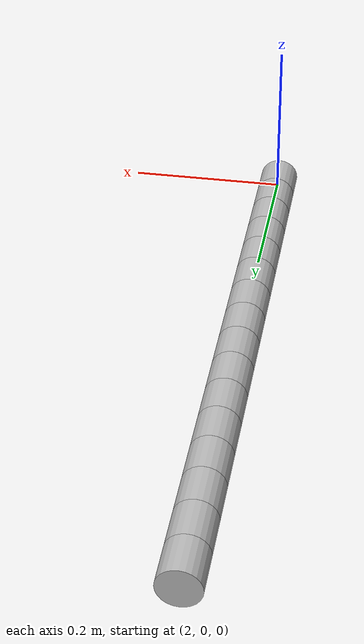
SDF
<sdf version="1.5">
 <world name="default">
  <include><uri>model://sun</uri></include>
  <model name="robot 3">
   <pose>2 0 0 1.57 -0 0</pose>
   <link name="base_link">
    <inertial>
     <pose>0 0 0.025 0 -0 0</pose>
     <mass>0.159</mass>
     <inertia>
      <ixx>5.7969e-05</ixx>
      <ixy>0</ixy>
      <ixz>0</ixz>
      <iyy>5.7969e-05</iyy>
      <iyz>0</iyz>
      <izz>4.9687e-05</izz>
     </inertia>
    </inertial>
    <collision name="base_link_collision">
     <geometry><cylinder><length>0.05</length><radius>0.025</radius></cylinder></geometry>
    </collision>
    <visual name="base_link_visual">
     <geometry><cylinder><length>0.05</length><radius>0.025</radius></cylinder></geometry>
    </visual>
   </link>
   <joint name="fixed" type="ball">
    <child>base_link</child>
    <parent>world</parent>
    <axis>
     <dynamics>
      <damping>0</damping>
      <friction>1</friction>
      <spring_reference>0</spring_reference>
      <spring_stiffness>0</spring_stiffness>
     </dynamics>
     <use_parent_model_frame>1</use_parent_model_frame>
     <xyz>0 0 1</xyz>
    </axis>
   </joint>
   <link name="link02">
    <pose>0 0 -0.025 0 -0 0</pose>
    <inertial>
     <pose>0 0 0.025 0 -0 0</pose>
     <mass>0.159</mass>
     <inertia>
      <ixx>5.7969e-05</ixx>
      <ixy>0</ixy>
      <ixz>0</ixz>
      <iyy>5.7969e-05</iyy>
      <iyz>0</iyz>
      <izz>4.9687e-05</izz>
     </inertia>
    </inertial>
    <collision name="link02_collision">
     <pose>0 0 -0.025 0 -0 0</pose>
     <geometry><cylinder><length>0.05</length><radius>0.025</radius></cylinder></geometry>
    </collision>
    <visual name="link02_visual">
     <pose>0 0 -0.025 0 -0 0</pose>
     <geometry><cylinder><length>0.05</length><radius>0.025</radius></cylinder></geometry>
    </visual>
   </link>
   <joint name="link0102" type="revolute">
    <child>link02</child>
    <parent>base_link</parent>
    <axis>
     <xyz>0 1 0</xyz>
     <limit><lower>-1.57075</lower><upper>1.57075</upper><effort>1000</effort><velocity>1</velocity></limit>
     <dynamics>
      <friction>0.2</friction>
      <spring_reference>0</spring_reference>
      <spring_stiffness>5.0</spring_stiffness>
     </dynamics>
     <use_parent_model_frame>1</use_parent_model_frame>
    </axis>
   </joint>
   <link name="link03">
    <pose>0 0 -0.075 0 -0 0</pose>
    <inertial>
     <pose>0 0 0.025 0 -0 0</pose>
     <mass>0.159</mass>
     <inertia>
      <ixx>5.7969e-05</ixx>
      <ixy>0</ixy>
      <ixz>0</ixz>
      <iyy>5.7969e-05</iyy>
      <iyz>0</iyz>
      <izz>4.9687e-05</izz>
     </inertia>
    </inertial>
    <collision name="link03_collision">
     <pose>0 0 -0.025 0 -0 0</pose>
     <geometry><cylinder><length>0.05</length><radius>0.025</radius></cylinder></geometry>
    </collision>
    <visual name="link03_visual">
     <pose>0 0 -0.025 0 -0 0</pose>
     <geometry><cylinder><length>0.05</length><radius>0.025</radius></cylinder></geometry>
    </visual>
   </link>
   <joint name="link0203" type="revolute">
    <child>link03</child>
    <parent>link02</parent>
    <axis>
     <xyz>1 0 0</xyz>
     <limit><lower>-1.57075</lower><upper>1.57075</upper><effort>1000</effort><velocity>1</velocity></limit>
     <dynamics>
      <friction>0.2</friction>
      <spring_reference>0</spring_reference>
      <spring_stiffness>5.0</spring_stiffness>
     </dynamics>
     <use_parent_model_frame>1</use_parent_model_frame>
    </axis>
   </joint>
   <link name="link04">
    <pose>0 0 -0.125 0 -0 0</pose>
    <inertial>
     <pose>0 0 0.025 0 -0 0</pose>
     <mass>0.159</mass>
     <inertia>
      <ixx>5.7969e-05</ixx>
      <ixy>0</ixy>
      <ixz>0</ixz>
      <iyy>5.7969e-05</iyy>
      <iyz>0</iyz>
      <izz>4.9687e-05</izz>
     </inertia>
    </inertial>
    <collision name="link04_collision">
     <pose>0 0 -0.025 0 -0 0</pose>
     <geometry><cylinder><length>0.05</length><radius>0.025</radius></cylinder></geometry>
    </collision>
    <visual name="link04_visual">
     <pose>0 0 -0.025 0 -0 0</pose>
     <geometry><cylinder><length>0.05</length><radius>0.025</radius></cylinder></geometry>
    </visual>
   </link>
   <joint name="link0304" type="revolute">
    <child>link04</child>
    <parent>link03</parent>
    <axis>
     <xyz>0 1 0</xyz>
     <limit><lower>-1.57075</lower><upper>1.57075</upper><effort>1000</effort><velocity>1</velocity></limit>
     <dynamics>
      <friction>0.2</friction>
      <spring_reference>0</spring_reference>
      <spring_stiffness>5.0</spring_stiffness>
     </dynamics>
     <use_parent_model_frame>1</use_parent_model_frame>
    </axis>
   </joint>
   <link name="link05">
    <pose>0 0 -0.175 0 -0 0</pose>
    <inertial>
     <pose>0 0 0.025 0 -0 0</pose>
     <mass>0.159</mass>
     <inertia>
      <ixx>5.7969e-05</ixx>
      <ixy>0</ixy>
      <ixz>0</ixz>
      <iyy>5.7969e-05</iyy>
      <iyz>0</iyz>
      <izz>4.9687e-05</izz>
     </inertia>
    </inertial>
    <collision name="link05_collision">
     <pose>0 0 -0.025 0 -0 0</pose>
     <geometry><cylinder><length>0.05</length><radius>0.025</radius></cylinder></geometry>
    </collision>
    <visual name="link05_visual">
     <pose>0 0 -0.025 0 -0 0</pose>
     <geometry><cylinder><length>0.05</length><radius>0.025</radius></cylinder></geometry>
    </visual>
   </link>
   <joint name="link0405" type="revolute">
    <child>link05</child>
    <parent>link04</parent>
    <axis>
     <xyz>1 0 0</xyz>
     <limit><lower>-1.57075</lower><upper>1.57075</upper><effort>1000</effort><velocity>1</velocity></limit>
     <dynamics>
      <friction>0.2</friction>
      <spring_reference>0</spring_reference>
      <spring_stiffness>5.0</spring_stiffness>
     </dynamics>
     <use_parent_model_frame>1</use_parent_model_frame>
    </axis>
   </joint>
   <link name="link06">
    <pose>0 0 -0.225 0 -0 0</pose>
    <inertial>
     <pose>0 0 0.025 0 -0 0</pose>
     <mass>0.159</mass>
     <inertia>
      <ixx>5.7969e-05</ixx>
      <ixy>0</ixy>
      <ixz>0</ixz>
      <iyy>5.7969e-05</iyy>
      <iyz>0</iyz>
      <izz>4.9687e-05</izz>
     </inertia>
    </inertial>
    <collision name="link06_collision">
     <pose>0 0 -0.025 0 -0 0</pose>
     <geometry><cylinder><length>0.05</length><radius>0.025</radius></cylinder></geometry>
    </collision>
    <visual name="link06_visual">
     <pose>0 0 -0.025 0 -0 0</pose>
     <geometry><cylinder><length>0.05</length><radius>0.025</radius></cylinder></geometry>
    </visual>
   </link>
   <joint name="link0506" type="revolute">
    <child>link06</child>
    <parent>link05</parent>
    <axis>
     <xyz>0 1 0</xyz>
     <limit><lower>-1.57075</lower><upper>1.57075</upper><effort>1000</effort><velocity>1</velocity></limit>
     <dynamics>
      <friction>0.2</friction>
      <spring_reference>0</spring_reference>
      <spring_stiffness>5.0</spring_stiffness>
     </dynamics>
     <use_parent_model_frame>1</use_parent_model_frame>
    </axis>
   </joint>
   <link name="link07">
    <pose>0 0 -0.275 0 -0 0</pose>
    <inertial>
     <pose>0 0 0.025 0 -0 0</pose>
     <mass>0.159</mass>
     <inertia>
      <ixx>5.7969e-05</ixx>
      <ixy>0</ixy>
      <ixz>0</ixz>
      <iyy>5.7969e-05</iyy>
      <iyz>0</iyz>
      <izz>4.9687e-05</izz>
     </inertia>
    </inertial>
    <collision name="link07_collision">
     <pose>0 0 -0.025 0 -0 0</pose>
     <geometry><cylinder><length>0.05</length><radius>0.025</radius></cylinder></geometry>
    </collision>
    <visual name="link07_visual">
     <pose>0 0 -0.025 0 -0 0</pose>
     <geometry><cylinder><length>0.05</length><radius>0.025</radius></cylinder></geometry>
    </visual>
   </link>
   <joint name="link0607" type="revolute">
    <child>link07</child>
    <parent>link06</parent>
    <axis>
     <xyz>1 0 0</xyz>
     <limit><lower>-1.57075</lower><upper>1.57075</upper><effort>1000</effort><velocity>1</velocity></limit>
     <dynamics>
      <friction>0.2</friction>
      <spring_reference>0</spring_reference>
      <spring_stiffness>5.0</spring_stiffness>
     </dynamics>
     <use_parent_model_frame>1</use_parent_model_frame>
    </axis>
   </joint>
   <link name="link08">
    <pose>0 0 -0.325 0 -0 0</pose>
    <inertial>
     <pose>0 0 0.025 0 -0 0</pose>
     <mass>0.159</mass>
     <inertia>
      <ixx>5.7969e-05</ixx>
      <ixy>0</ixy>
      <ixz>0</ixz>
      <iyy>5.7969e-05</iyy>
      <iyz>0</iyz>
      <izz>4.9687e-05</izz>
     </inertia>
    </inertial>
    <collision name="link08_collision">
     <pose>0 0 -0.025 0 -0 0</pose>
     <geometry><cylinder><length>0.05</length><radius>0.025</radius></cylinder></geometry>
    </collision>
    <visual name="link08_visual">
     <pose>0 0 -0.025 0 -0 0</pose>
     <geometry><cylinder><length>0.05</length><radius>0.025</radius></cylinder></geometry>
    </visual>
   </link>
   <joint name="link0708" type="revolute">
    <child>link08</child>
    <parent>link07</parent>
    <axis>
     <xyz>0 1 0</xyz>
     <limit><lower>-1.57075</lower><upper>1.57075</upper><effort>1000</effort><velocity>1</velocity></limit>
     <dynamics>
      <friction>0.2</friction>
      <spring_reference>0</spring_reference>
      <spring_stiffness>5.0</spring_stiffness>
     </dynamics>
     <use_parent_model_frame>1</use_parent_model_frame>
    </axis>
   </joint>
   <link name="link09">
    <pose>0 0 -0.375 0 -0 0</pose>
    <inertial>
     <pose>0 0 0.025 0 -0 0</pose>
     <mass>0.159</mass>
     <inertia>
      <ixx>5.7969e-05</ixx>
      <ixy>0</ixy>
      <ixz>0</ixz>
      <iyy>5.7969e-05</iyy>
      <iyz>0</iyz>
      <izz>4.9687e-05</izz>
     </inertia>
    </inertial>
    <collision name="link09_collision">
     <pose>0 0 -0.025 0 -0 0</pose>
     <geometry><cylinder><length>0.05</length><radius>0.025</radius></cylinder></geometry>
    </collision>
    <visual name="link09_visual">
     <pose>0 0 -0.025 0 -0 0</pose>
     <geometry><cylinder><length>0.05</length><radius>0.025</radius></cylinder></geometry>
    </visual>
   </link>
   <joint name="link0809" type="revolute">
    <child>link09</child>
    <parent>link08</parent>
    <axis>
     <xyz>1 0 0</xyz>
     <limit><lower>-1.57075</lower><upper>1.57075</upper><effort>1000</effort><velocity>1</velocity></limit>
     <dynamics>
      <friction>0.2</friction>
      <spring_reference>0</spring_reference>
      <spring_stiffness>5.0</spring_stiffness>
     </dynamics>
     <use_parent_model_frame>1</use_parent_model_frame>
    </axis>
   </joint>
   <link name="link10">
    <pose>0 0 -0.425 0 -0 0</pose>
    <inertial>
     <pose>0 0 0.025 0 -0 0</pose>
     <mass>0.159</mass>
     <inertia>
      <ixx>5.7969e-05</ixx>
      <ixy>0</ixy>
      <ixz>0</ixz>
      <iyy>5.7969e-05</iyy>
      <iyz>0</iyz>
      <izz>4.9687e-05</izz>
     </inertia>
    </inertial>
    <collision name="link10_collision">
     <pose>0 0 -0.025 0 -0 0</pose>
     <geometry><cylinder><length>0.05</length><radius>0.025</radius></cylinder></geometry>
    </collision>
    <visual name="link10_visual">
     <pose>0 0 -0.025 0 -0 0</pose>
     <geometry><cylinder><length>0.05</length><radius>0.025</radius></cylinder></geometry>
    </visual>
   </link>
   <joint name="link0910" type="revolute">
    <child>link10</child>
    <parent>link09</parent>
    <axis>
     <xyz>0 1 0</xyz>
     <limit><lower>-1.57075</lower><upper>1.57075</upper><effort>1000</effort><velocity>1</velocity></limit>
     <dynamics>
      <friction>0.2</friction>
      <spring_reference>0</spring_reference>
      <spring_stiffness>5.0</spring_stiffness>
     </dynamics>
     <use_parent_model_frame>1</use_parent_model_frame>
    </axis>
   </joint>
   <link name="link11">
    <pose>0 0 -0.475 0 -0 0</pose>
    <inertial>
     <pose>0 0 0.025 0 -0 0</pose>
     <mass>0.159</mass>
     <inertia>
      <ixx>5.7969e-05</ixx>
      <ixy>0</ixy>
      <ixz>0</ixz>
      <iyy>5.7969e-05</iyy>
      <iyz>0</iyz>
      <izz>4.9687e-05</izz>
     </inertia>
    </inertial>
    <collision name="link11_collision">
     <pose>0 0 -0.025 0 -0 0</pose>
     <geometry><cylinder><length>0.05</length><radius>0.025</radius></cylinder></geometry>
    </collision>
    <visual name="link11_visual">
     <pose>0 0 -0.025 0 -0 0</pose>
     <geometry><cylinder><length>0.05</length><radius>0.025</radius></cylinder></geometry>
    </visual>
   </link>
   <joint name="link1011" type="revolute">
    <child>link11</child>
    <parent>link10</parent>
    <axis>
     <xyz>1 0 0</xyz>
     <limit><lower>-1.57075</lower><upper>1.57075</upper><effort>1000</effort><velocity>1</velocity></limit>
     <dynamics>
      <friction>0.2</friction>
      <spring_reference>0</spring_reference>
      <spring_stiffness>5.0</spring_stiffness>
     </dynamics>
     <use_parent_model_frame>1</use_parent_model_frame>
    </axis>
   </joint>
   <link name="link12">
    <pose>0 0 -0.525 0 -0 0</pose>
    <inertial>
     <pose>0 0 0.025 0 -0 0</pose>
     <mass>0.159</mass>
     <inertia>
      <ixx>5.7969e-05</ixx>
      <ixy>0</ixy>
      <ixz>0</ixz>
      <iyy>5.7969e-05</iyy>
      <iyz>0</iyz>
      <izz>4.9687e-05</izz>
     </inertia>
    </inertial>
    <collision name="link12_collision">
     <pose>0 0 -0.025 0 -0 0</pose>
     <geometry><cylinder><length>0.05</length><radius>0.025</radius></cylinder></geometry>
    </collision>
    <visual name="link12_visual">
     <pose>0 0 -0.025 0 -0 0</pose>
     <geometry><cylinder><length>0.05</length><radius>0.025</radius></cylinder></geometry>
    </visual>
   </link>
   <joint name="link1112" type="revolute">
    <child>link12</child>
    <parent>link11</parent>
    <axis>
     <xyz>0 1 0</xyz>
     <limit><lower>-1.57075</lower><upper>1.57075</upper><effort>1000</effort><velocity>1</velocity></limit>
     <dynamics>
      <friction>0.2</friction>
      <spring_reference>0</spring_reference>
      <spring_stiffness>5.0</spring_stiffness>
     </dynamics>
     <use_parent_model_frame>1</use_parent_model_frame>
    </axis>
   </joint>
   <link name="link13">
    <pose>0 0 -0.575 0 -0 0</pose>
    <inertial>
     <pose>0 0 0.025 0 -0 0</pose>
     <mass>0.159</mass>
     <inertia>
      <ixx>5.7969e-05</ixx>
      <ixy>0</ixy>
      <ixz>0</ixz>
      <iyy>5.7969e-05</iyy>
      <iyz>0</iyz>
      <izz>4.9687e-05</izz>
     </inertia>
    </inertial>
    <collision name="link13_collision">
     <pose>0 0 -0.025 0 -0 0</pose>
     <geometry><cylinder><length>0.05</length><radius>0.025</radius></cylinder></geometry>
    </collision>
    <visual name="link13_visual">
     <pose>0 0 -0.025 0 -0 0</pose>
     <geometry><cylinder><length>0.05</length><radius>0.025</radius></cylinder></geometry>
    </visual>
   </link>
   <joint name="link1213" type="revolute">
    <child>link13</child>
    <parent>link12</parent>
    <axis>
     <xyz>1 0 0</xyz>
     <limit><lower>-1.57075</lower><upper>1.57075</upper><effort>1000</effort><velocity>1</velocity></limit>
     <dynamics>
      <friction>0.2</friction>
      <spring_reference>0</spring_reference>
      <spring_stiffness>5.0</spring_stiffness>
     </dynamics>
     <use_parent_model_frame>1</use_parent_model_frame>
    </axis>
   </joint>
   <link name="link14">
    <pose>0 0 -0.625 0 -0 0</pose>
    <inertial>
     <pose>0 0 0.025 0 -0 0</pose>
     <mass>0.159</mass>
     <inertia>
      <ixx>5.7969e-05</ixx>
      <ixy>0</ixy>
      <ixz>0</ixz>
      <iyy>5.7969e-05</iyy>
      <iyz>0</iyz>
      <izz>4.9687e-05</izz>
     </inertia>
    </inertial>
    <collision name="link14_collision">
     <pose>0 0 -0.025 0 -0 0</pose>
     <geometry><cylinder><length>0.05</length><radius>0.025</radius></cylinder></geometry>
    </collision>
    <visual name="link14_visual">
     <pose>0 0 -0.025 0 -0 0</pose>
     <geometry><cylinder><length>0.05</length><radius>0.025</radius></cylinder></geometry>
    </visual>
   </link>
   <joint name="link1314" type="revolute">
    <child>link14</child>
    <parent>link13</parent>
    <axis>
     <xyz>0 1 0</xyz>
     <limit><lower>-1.57075</lower><upper>1.57075</upper><effort>1000</effort><velocity>1</velocity></limit>
     <dynamics>
      <friction>0.2</friction>
      <spring_reference>0</spring_reference>
      <spring_stiffness>5.0</spring_stiffness>
     </dynamics>
     <use_parent_model_frame>1</use_parent_model_frame>
    </axis>
   </joint>
   <link name="link15">
    <pose>0 0 -0.675 0 -0 0</pose>
    <inertial>
     <pose>0 0 0.025 0 -0 0</pose>
     <mass>0.159</mass>
     <inertia>
      <ixx>5.7969e-05</ixx>
      <ixy>0</ixy>
      <ixz>0</ixz>
      <iyy>5.7969e-05</iyy>
      <iyz>0</iyz>
      <izz>4.9687e-05</izz>
     </inertia>
    </inertial>
    <collision name="link15_collision">
     <pose>0 0 -0.025 0 -0 0</pose>
     <geometry><cylinder><length>0.05</length><radius>0.025</radius></cylinder></geometry>
    </collision>
    <visual name="link15_visual">
     <pose>0 0 -0.025 0 -0 0</pose>
     <geometry><cylinder><length>0.05</length><radius>0.025</radius></cylinder></geometry>
    </visual>
   </link>
   <joint name="link1415" type="revolute">
    <child>link15</child>
    <parent>link14</parent>
    <axis>
     <xyz>1 0 0</xyz>
     <limit><lower>-1.57075</lower><upper>1.57075</upper><effort>1000</effort><velocity>1</velocity></limit>
     <dynamics>
      <friction>0.2</friction>
      <spring_reference>0</spring_reference>
      <spring_stiffness>5.0</spring_stiffness>
     </dynamics>
     <use_parent_model_frame>1</use_parent_model_frame>
    </axis>
   </joint>
   <link name="link16">
    <pose>0 0 -0.725 0 -0 0</pose>
    <inertial>
     <pose>0 0 0.025 0 -0 0</pose>
     <mass>0.159</mass>
     <inertia>
      <ixx>5.7969e-05</ixx>
      <ixy>0</ixy>
      <ixz>0</ixz>
      <iyy>5.7969e-05</iyy>
      <iyz>0</iyz>
      <izz>4.9687e-05</izz>
     </inertia>
    </inertial>
    <collision name="link16_collision">
     <pose>0 0 -0.025 0 -0 0</pose>
     <geometry><cylinder><length>0.05</length><radius>0.025</radius></cylinder></geometry>
    </collision>
    <visual name="link16_visual">
     <pose>0 0 -0.025 0 -0 0</pose>
     <geometry><cylinder><length>0.05</length><radius>0.025</radius></cylinder></geometry>
    </visual>
   </link>
   <joint name="link1516" type="revolute">
    <child>link16</child>
    <parent>link15</parent>
    <axis>
     <xyz>0 1 0</xyz>
     <limit><lower>-1.57075</lower><upper>1.57075</upper><effort>1000</effort><velocity>1</velocity></limit>
     <dynamics>
      <friction>0.2</friction>
      <spring_reference>0</spring_reference>
      <spring_stiffness>5.0</spring_stiffness>
     </dynamics>
     <use_parent_model_frame>1</use_parent_model_frame>
    </axis>
   </joint>
  </model>
 </world>
</sdf>
